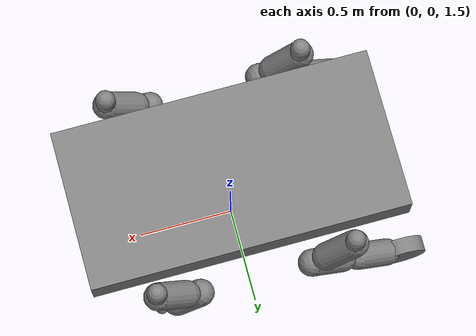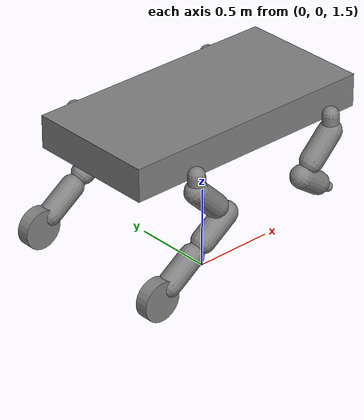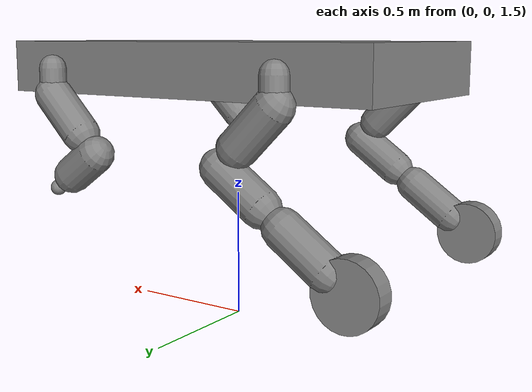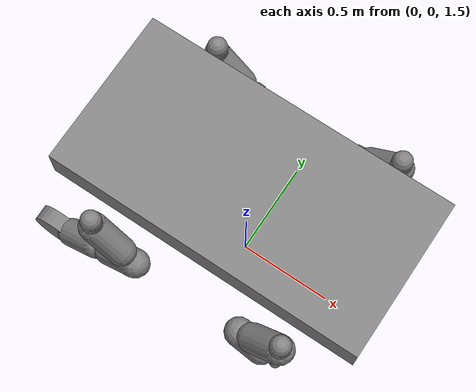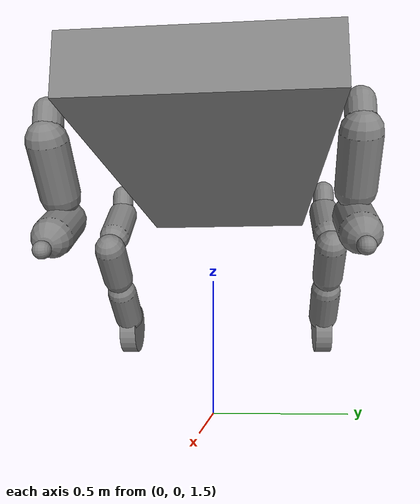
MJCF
<mujoco model="xmlrobot_91">
	<compiler inertiafromgeom="true" />
	<option gravity="0 0 -9.8" />
	<size nconmax="500" njmax="1000" />
	<custom />
	<default />
	<asset />
	<worldbody>
		<body name="root" pos="0 0 2.5" quat="0.707 0.0 0.0 -0.707">
			<geom density="5.0" friction="1.5 0.005 0.0001" name="geomroot" pos="-0.02 0 0.07" quat="1.0 0.0 0.0 0.0" size="0.15 0.15 0.02" type="box" />
			<body name="body1" pos="0 0 0" quat="1.0 0.0 0.0 0.0">
				<geom density="5.0" friction="1.5 0.005 0.0001" name="geombody1" pos="-0.02 0 0" quat="1.0 0.0 0.0 0.0" size="0.4 0.8 0.1" type="box" />
				<joint armature="0.005" axis="0 0 1" damping="1.0" limited="true" name="joint_joint1" pos="0 0 0" range="-5 5" stiffness="2.0" type="hinge" />
				<body name="limbmount4" pos="0.5 -0.5 0" quat="0.70711 0.0 0.70711 0.0">
					<geom density="500" friction="1.5 0.005 0.0001" fromto="0 0 0 0.05 0 0" name="geomlimbmount4" quat="1.0 0.0 0.0 0.0" size="0.05" type="capsule" />
					<joint armature="0.005" axis="0 1 0" damping="1.0" limited="true" name="joint_joint5" pos="0 0 0" range="-5 5" stiffness="2.0" type="hinge" />
					<body name="limbmount4_new_new" pos="0.1 0 0" quat="0.92388 0.0 0.0 0.38268">
						<geom density="500" friction="1.5 0.005 0.0001" fromto="0 0 0 0.2 0 0" name="geomlimbmount4_new_new" quat="1.0 0.0 0.0 0.0" size="0.07" type="capsule" />
						<joint armature="0.005" axis="0 0 1" damping="1.0" limited="true" name="joint_limbmount4_new" pos="0 0 0" range="-45 45" stiffness="2.0" type="hinge" />
						<body name="limbmount4_new_new_new_new" pos="0.30000000000000004 0 0" quat="0.64279 0.0 0.0 -0.76604">
							<geom density="500" friction="1.5 0.005 0.0001" fromto="0 0 0 0.2 0 0" name="geomlimbmount4_new_new_new_new" quat="1.0 0.0 0.0 0.0" size="0.07" type="capsule" />
							<joint armature="0.005" axis="0 0 1" damping="1.0" limited="true" name="joint_limbmount4_new_new_new" pos="0 0 0" range="-45 45" stiffness="2.0" type="hinge" />
							<body name="limbmount4_new_new_new_new_new_new" pos="0.30000000000000004 0 0" quat="1.0 0.0 0.0 0.0">
								<geom density="500" friction="1.5 0.005 0.0001" fromto="0 0 0 0.2 0 0" name="geomlimbmount4_new_new_new_new_new_new" quat="1.0 0.0 0.0 0.0" size="0.07" type="capsule" />
								<joint armature="0.005" axis="0 0 1" damping="1.0" limited="true" name="joint_limbmount4_new_new_new_new_new" pos="0 0 0" range="-45 45" stiffness="2.0" type="hinge" />
								<body name="limbmount4_new_new_new_new_new_new_new_new" pos="0.30000000000000004 0 -0.04" quat="0.70711 0.0 -0.70711 0.0">
									<geom density="500" euler="0 0 0" friction="1.5 0.005 0.0001" fromto="0 0 0 0.08 0 0" name="geomlimbmount4_new_new_new_new_new_new_new_new" pos="0 0 0" size="0.12" type="cylinder" />
									<joint armature="0.005" axis="1 0 0" damping="1.0" name="joint_limbmount4_new_new_new_new_new_new_new" pos="0 0 0" stiffness="2.0" type="hinge" />
								</body>
							</body>
						</body>
					</body>
				</body>
				<body name="limbmount3" pos="-0.5 -0.5 0" quat="0.70711 0.0 0.70711 0.0">
					<geom density="500" friction="1.5 0.005 0.0001" fromto="0 0 0 0.05 0 0" name="geomlimbmount3" quat="1.0 0.0 0.0 0.0" size="0.05" type="capsule" />
					<joint armature="0.005" axis="0 1 0" damping="1.0" limited="true" name="joint_joint4" pos="0 0 0" range="-5 5" stiffness="2.0" type="hinge" />
					<body name="upper_link_f1" pos="0.1 0 0" quat="0.92388 0.0 0.0 0.38268">
						<geom density="500" friction="1.5 0.005 0.0001" fromto="0 0 0 0.2 0 0" name="geomupper_link_f1" quat="1.0 0.0 0.0 0.0" size="0.07" type="capsule" />
						<joint armature="0.005" axis="0 0 1" damping="1.0" limited="true" name="joint_joint7" pos="0 0 0" range="-45 45" stiffness="2.0" type="hinge" />
						<body name="lower_link_b2" pos="0.30000000000000004 0 0" quat="0.64279 0.0 0.0 -0.76604">
							<geom density="500" friction="1.5 0.005 0.0001" fromto="0 0 0 0.2 0 0" name="geomlower_link_b2" quat="1.0 0.0 0.0 0.0" size="0.07" type="capsule" />
							<joint armature="0.005" axis="0 0 1" damping="1.0" limited="true" name="joint_joint12" pos="0 0 0" range="-45 45" stiffness="2.0" type="hinge" />
							<body name="lower_link6" pos="0.30000000000000004 0 0" quat="1.0 0.0 0.0 0.0">
								<geom density="500" friction="1.5 0.005 0.0001" fromto="0 0 0 0.2 0 0" name="geomlower_link6" quat="1.0 0.0 0.0 0.0" size="0.07" type="capsule" />
								<joint armature="0.005" axis="0 0 1" damping="1.0" limited="true" name="joint_joint16" pos="0 0 0" range="-45 45" stiffness="2.0" type="hinge" />
								<body name="wheel_link_end2" pos="0.30000000000000004 0 -0.04" quat="0.70711 0.0 -0.70711 0.0">
									<geom density="500" euler="0 0 0" friction="1.5 0.005 0.0001" fromto="0 0 0 0.08 0 0" name="geomwheel_link_end2" pos="0 0 0" size="0.12" type="cylinder" />
									<joint armature="0.005" axis="1 0 0" damping="1.0" name="joint_joint20" pos="0 0 0" stiffness="2.0" type="hinge" />
								</body>
							</body>
						</body>
					</body>
				</body>
				<body name="limbmount2" pos="-0.5 0.5 0" quat="0.70711 0.0 0.70711 0.0">
					<geom density="500" friction="1.5 0.005 0.0001" fromto="0 0 0 0.05 0 0" name="geomlimbmount2" quat="1.0 0.0 0.0 0.0" size="0.05" type="capsule" />
					<joint armature="0.005" axis="0 1 0" damping="1.0" limited="true" name="joint_joint3" pos="0 0 0" range="-5 5" stiffness="2.0" type="hinge" />
					<body name="limbmount2_new_new" pos="0.1 0 0" quat="0.92388 0.0 0.0 -0.38268">
						<geom density="500" friction="1.5 0.005 0.0001" fromto="0 0 0 0.2 0 0" name="geomlimbmount2_new_new" quat="1.0 0.0 0.0 0.0" size="0.07" type="capsule" />
						<joint armature="0.005" axis="0 0 1" damping="1.0" limited="true" name="joint_limbmount2_new" pos="0 0 0" range="-45 45" stiffness="2.0" type="hinge" />
						<body name="limbmount2_new_new_new_new" pos="0.30000000000000004 0 0" quat="0.64279 0.0 0.0 0.76604">
							<geom density="500" friction="1.5 0.005 0.0001" fromto="0 0 0 0.15 0 0" name="geomlimbmount2_new_new_new_new" quat="1.0 0.0 0.0 0.0" size="0.07" type="capsule" />
							<joint armature="0.005" axis="0 0 1" damping="1.0" limited="true" name="joint_limbmount2_new_new_new" pos="0 0 0" range="-45 45" stiffness="2.0" type="hinge" />
							<body name="limbmount2_new_new_new_new_new_new" pos="0.25 0 0" quat="1.0 0.0 0.0 0.0">
								<geom density="500" friction="1.5 0.005 0.0001" name="geomlimbmount2_new_new_new_new_new_new" pos="0 0 0" quat="1.0 0.0 0.0 0.0" size="0.03" type="sphere" />
								<joint armature="0.005" axis="1 0 0" damping="1.0" limited="true" name="joint_limbmount2_new_new_new_new_new" pos="0 0 0" range="-5 5" stiffness="2.0" type="hinge" />
							</body>
						</body>
					</body>
				</body>
				<body name="limbmount1" pos="0.5 0.5 0" quat="0.70711 0.0 0.70711 0.0">
					<geom density="500" friction="1.5 0.005 0.0001" fromto="0 0 0 0.05 0 0" name="geomlimbmount1" quat="1.0 0.0 0.0 0.0" size="0.05" type="capsule" />
					<joint armature="0.005" axis="0 1 0" damping="1.0" limited="true" name="joint_joint2" pos="0 0 0" range="-5 5" stiffness="2.0" type="hinge" />
					<body name="upper_link_b1" pos="0.1 0 0" quat="0.92388 0.0 0.0 -0.38268">
						<geom density="500" friction="1.5 0.005 0.0001" fromto="0 0 0 0.2 0 0" name="geomupper_link_b1" quat="1.0 0.0 0.0 0.0" size="0.07" type="capsule" />
						<joint armature="0.005" axis="0 0 1" damping="1.0" limited="true" name="joint_joint6" pos="0 0 0" range="-45 45" stiffness="2.0" type="hinge" />
						<body name="lower_link_f1" pos="0.30000000000000004 0 0" quat="0.64279 0.0 0.0 0.76604">
							<geom density="500" friction="1.5 0.005 0.0001" fromto="0 0 0 0.15 0 0" name="geomlower_link_f1" quat="1.0 0.0 0.0 0.0" size="0.07" type="capsule" />
							<joint armature="0.005" axis="0 0 1" damping="1.0" limited="true" name="joint_joint10" pos="0 0 0" range="-45 45" stiffness="2.0" type="hinge" />
							<body name="foot_link_end1" pos="0.25 0 0" quat="1.0 0.0 0.0 0.0">
								<geom density="500" friction="1.5 0.005 0.0001" name="geomfoot_link_end1" pos="0 0 0" quat="1.0 0.0 0.0 0.0" size="0.03" type="sphere" />
								<joint armature="0.005" axis="1 0 0" damping="1.0" limited="true" name="joint_joint17" pos="0 0 0" range="-5 5" stiffness="2.0" type="hinge" />
							</body>
						</body>
					</body>
				</body>
			</body>
		</body>
	</worldbody>
	<actuator>
		<motor ctrllimited="true" ctrlrange="-1 1" gear="22.5" joint="joint_joint1" />
		<motor ctrllimited="true" ctrlrange="-1 1" gear="45" joint="joint_joint5" />
		<motor ctrllimited="true" ctrlrange="-1 1" gear="45" joint="joint_limbmount4_new" />
		<motor ctrllimited="true" ctrlrange="-1 1" gear="45" joint="joint_limbmount4_new_new_new" />
		<motor ctrllimited="true" ctrlrange="-1 1" gear="45" joint="joint_limbmount4_new_new_new_new_new" />
		<motor ctrllimited="true" ctrlrange="-1 1" gear="45" joint="joint_limbmount4_new_new_new_new_new_new_new" />
		<motor ctrllimited="true" ctrlrange="-1 1" gear="45" joint="joint_joint4" />
		<motor ctrllimited="true" ctrlrange="-1 1" gear="45" joint="joint_joint7" />
		<motor ctrllimited="true" ctrlrange="-1 1" gear="45" joint="joint_joint12" />
		<motor ctrllimited="true" ctrlrange="-1 1" gear="45" joint="joint_joint16" />
		<motor ctrllimited="true" ctrlrange="-1 1" gear="45" joint="joint_joint20" />
		<motor ctrllimited="true" ctrlrange="-1 1" gear="45" joint="joint_joint3" />
		<motor ctrllimited="true" ctrlrange="-1 1" gear="45" joint="joint_limbmount2_new" />
		<motor ctrllimited="true" ctrlrange="-1 1" gear="45" joint="joint_limbmount2_new_new_new" />
		<motor ctrllimited="true" ctrlrange="-1 1" gear="45" joint="joint_limbmount2_new_new_new_new_new" />
		<motor ctrllimited="true" ctrlrange="-1 1" gear="45" joint="joint_joint2" />
		<motor ctrllimited="true" ctrlrange="-1 1" gear="45" joint="joint_joint6" />
		<motor ctrllimited="true" ctrlrange="-1 1" gear="45" joint="joint_joint10" />
		<motor ctrllimited="true" ctrlrange="-1 1" gear="45" joint="joint_joint17" />
	</actuator>
</mujoco>
